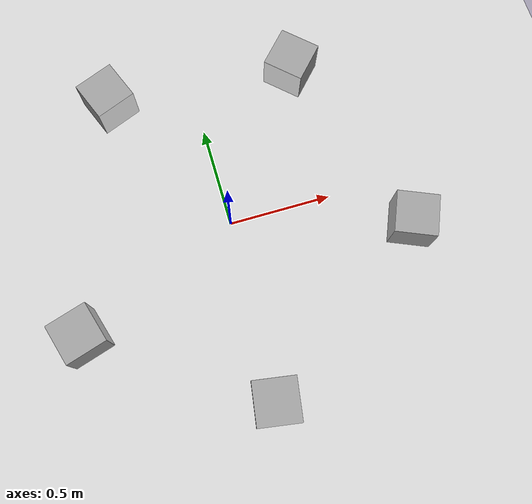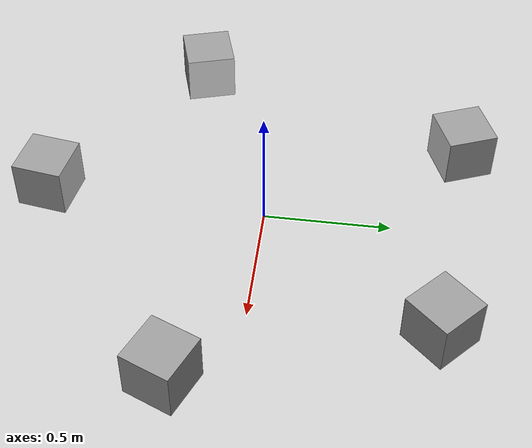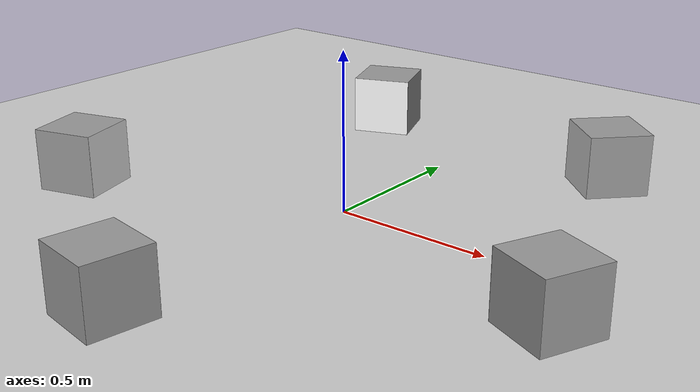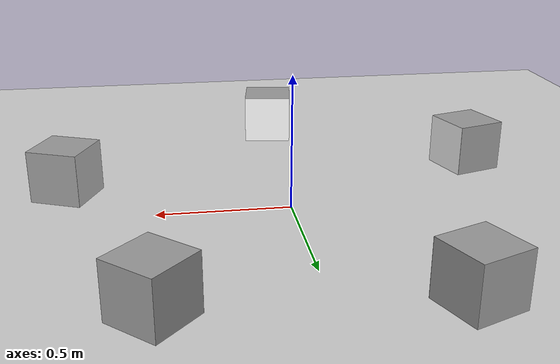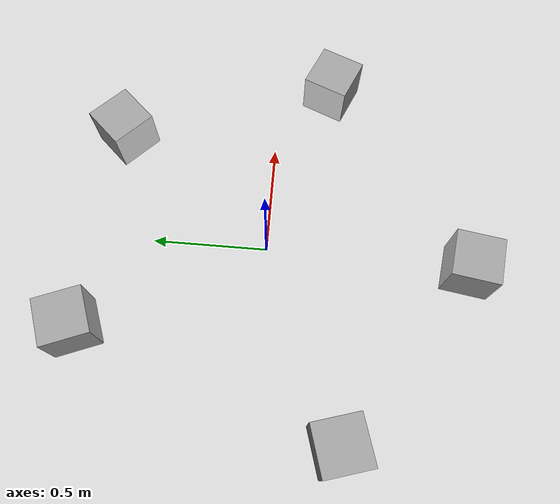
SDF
<sdf version="1.7">
 <world name="default">
  <light name="sun" type="directional">
   <pose>0 0 10 0 -0 0</pose>
   <diffuse>0.8 0.8 0.8 1</diffuse>
   <specular>0.2 0.2 0.2 1</specular>
   <attenuation>
    <range>1000</range>
    <constant>0.9</constant>
    <linear>0.01</linear>
    <quadratic>0.001</quadratic>
   </attenuation>
   <direction>-0.5 0.1 -0.9</direction>
   <spot><inner_angle>0</inner_angle><outer_angle>0</outer_angle><falloff>0</falloff></spot>
  </light>
  <model name="ground_plane">
   <static>1</static>
   <link name="link">
    <collision name="collision">
     <geometry><plane><normal>0 0 1</normal><size>100 100</size></plane></geometry>
     <surface>
      <contact><collide_bitmask>65535</collide_bitmask></contact>
      <friction><ode><mu>100</mu><mu2>50</mu2></ode></friction>
     </surface>
    </collision>
    <visual name="visual">
     <cast_shadows>0</cast_shadows>
     <geometry><plane><normal>0 0 1</normal><size>100 100</size></plane></geometry>
     <material>
      <script><uri>file:///home/med/.gazebo/materials/scripts/gazebo.material</uri><name>Gazebo/Grey</name></script>
     </material>
    </visual>
   </link>
  </model>
  <gravity>0 0 -9.8</gravity>
  <magnetic_field>6e-06 2.3e-05 -4.2e-05</magnetic_field>
  <atmosphere type="adiabatic"/>
  <physics type="ode">
   <max_step_size>0.001</max_step_size>
   <real_time_factor>1</real_time_factor>
   <real_time_update_rate>1000</real_time_update_rate>
  </physics>
  <scene><ambient>0.4 0.4 0.4 1</ambient><background>0.7 0.7 0.7 1</background><shadows>1</shadows></scene>
  <audio><device>default</device></audio>
  <spherical_coordinates>
   <surface_model>EARTH_WGS84</surface_model>
   <latitude_deg>0</latitude_deg>
   <longitude_deg>0</longitude_deg>
   <elevation>0</elevation>
   <heading_deg>0</heading_deg>
  </spherical_coordinates>
  <model name="marker1_box">
   <link name="marker">
    <inertial>
     <mass>0.1</mass>
     <inertia><ixx>0</ixx><ixy>0</ixy><ixz>0</ixz><iyy>0</iyy><iyz>0</iyz><izz>0</izz></inertia>
    </inertial>
    <self_collide>1</self_collide>
    <pose>-0.76428 -0.101106 0.120004 -0.015494 1.56996 -0.015507</pose>
    <visual name="visual">
     <geometry><box><size>0.2 0.2 0.001</size></box></geometry>
     <material>
      <script>
       <uri>file:///home/med/.gazebo/models/marker1/materials/scripts</uri>
       <uri>file:///home/med/.gazebo/models/marker1/materials/textures</uri>
       <name>Aruco/marker1</name>
      </script>
      <shader type="pixel"><normal_map>__default__</normal_map></shader>
      <emissive>0 0 0 1</emissive>
      <ambient>1 1 1 1</ambient>
      <diffuse>1 1 1 1</diffuse>
      <specular>0 0 0 1</specular>
     </material>
    </visual>
    <collision name="collision">
     <geometry><box><size>0.2 0.2 0.02</size></box></geometry>
     <surface>
      <friction>
       <ode><mu>1</mu><mu2>1</mu2><fdir1>0 0 0</fdir1><slip1>0</slip1><slip2>0</slip2></ode>
       <torsional>
        <coefficient>1</coefficient>
        <patch_radius>0</patch_radius>
        <surface_radius>0</surface_radius>
        <use_patch_radius>1</use_patch_radius>
        <ode><slip>0</slip></ode>
       </torsional>
      </friction>
      <bounce><restitution_coefficient>0</restitution_coefficient><threshold>1e+06</threshold></bounce>
      <contact>
       <collide_without_contact>0</collide_without_contact>
       <collide_without_contact_bitmask>1</collide_without_contact_bitmask>
       <collide_bitmask>1</collide_bitmask>
       <ode>
        <soft_cfm>0</soft_cfm>
        <soft_erp>0.2</soft_erp>
        <kp>1e+13</kp>
        <kd>1</kd>
        <max_vel>0.01</max_vel>
        <min_depth>0</min_depth>
       </ode>
       <bullet>
        <split_impulse>1</split_impulse>
        <split_impulse_penetration_threshold>-0.01</split_impulse_penetration_threshold>
        <soft_cfm>0</soft_cfm>
        <soft_erp>0.2</soft_erp>
        <kp>1e+13</kp>
        <kd>1</kd>
       </bullet>
      </contact>
     </surface>
    </collision>
   </link>
   <link name="link_1">
    <inertial>
     <mass>1</mass>
     <inertia>
      <ixx>0.166667</ixx>
      <ixy>0</ixy>
      <ixz>0</ixz>
      <iyy>0.166667</iyy>
      <iyz>0</iyz>
      <izz>0.166667</izz>
     </inertia>
    </inertial>
    <pose>-0.86428 -0.101106 0.12 -1.3e-05 -4.2e-05 0</pose>
    <visual name="visual">
     <geometry><box><size>0.2 0.2 0.2</size></box></geometry>
     <material>
      <lighting>1</lighting>
      <script><uri>file://media/materials/scripts/gazebo.material</uri><name>Gazebo/Grey</name></script>
      <shader type="pixel"><normal_map>__default__</normal_map></shader>
      <emissive>0 0 0 1</emissive>
      <ambient>0.3 0.3 0.3 1</ambient>
      <diffuse>0.7 0.7 0.7 1</diffuse>
      <specular>0.01 0.01 0.01 1</specular>
     </material>
    </visual>
    <collision name="collision">
     <geometry><box><size>0.2 0.2 0.2</size></box></geometry>
     <surface>
      <friction>
       <ode><mu>1</mu><mu2>1</mu2><fdir1>0 0 0</fdir1><slip1>0</slip1><slip2>0</slip2></ode>
       <torsional>
        <coefficient>1</coefficient>
        <patch_radius>0</patch_radius>
        <surface_radius>0</surface_radius>
        <use_patch_radius>1</use_patch_radius>
        <ode><slip>0</slip></ode>
       </torsional>
      </friction>
      <bounce><restitution_coefficient>0</restitution_coefficient><threshold>1e+06</threshold></bounce>
      <contact>
       <collide_without_contact>0</collide_without_contact>
       <collide_without_contact_bitmask>1</collide_without_contact_bitmask>
       <collide_bitmask>1</collide_bitmask>
       <ode>
        <soft_cfm>0</soft_cfm>
        <soft_erp>0.2</soft_erp>
        <kp>1e+13</kp>
        <kd>1</kd>
        <max_vel>0.01</max_vel>
        <min_depth>0</min_depth>
       </ode>
       <bullet>
        <split_impulse>1</split_impulse>
        <split_impulse_penetration_threshold>-0.01</split_impulse_penetration_threshold>
        <soft_cfm>0</soft_cfm>
        <soft_erp>0.2</soft_erp>
        <kp>1e+13</kp>
        <kd>1</kd>
       </bullet>
      </contact>
     </surface>
    </collision>
   </link>
   <joint name="link_1_JOINT_3" type="fixed">
    <parent>link_1</parent>
    <child>marker</child>
    <physics>
     <ode><limit><cfm>0</cfm><erp>0.2</erp></limit><suspension><cfm>0</cfm><erp>0.2</erp></suspension></ode>
    </physics>
   </joint>
   <static>0</static>
   <pose>-0.003836 0.001459 -0.020009 1.2e-05 1.9e-05 2.73703</pose>
  </model>
  <model name="marker2_box">
   <link name="marker">
    <inertial>
     <mass>0.1</mass>
     <inertia><ixx>0</ixx><ixy>0</ixy><ixz>0</ixz><iyy>0</iyy><iyz>0</iyz><izz>0</izz></inertia>
    </inertial>
    <self_collide>1</self_collide>
    <pose>-0.76428 -0.101106 0.120004 -0.015494 1.56996 -0.015507</pose>
    <visual name="visual">
     <geometry><box><size>0.2 0.2 0.001</size></box></geometry>
     <material>
      <script>
       <uri>file:///home/med/.gazebo/models/marker2/materials/scripts</uri>
       <uri>file:///home/med/.gazebo/models/marker2/materials/textures</uri>
       <name>Aruco/marker2</name>
      </script>
      <shader type="pixel"><normal_map>__default__</normal_map></shader>
      <emissive>0 0 0 1</emissive>
      <ambient>1 1 1 1</ambient>
      <diffuse>1 1 1 1</diffuse>
      <specular>0 0 0 1</specular>
     </material>
    </visual>
    <collision name="collision">
     <geometry><box><size>0.2 0.2 0.02</size></box></geometry>
     <surface>
      <friction>
       <ode><mu>1</mu><mu2>1</mu2><fdir1>0 0 0</fdir1><slip1>0</slip1><slip2>0</slip2></ode>
       <torsional>
        <coefficient>1</coefficient>
        <patch_radius>0</patch_radius>
        <surface_radius>0</surface_radius>
        <use_patch_radius>1</use_patch_radius>
        <ode><slip>0</slip></ode>
       </torsional>
      </friction>
      <bounce><restitution_coefficient>0</restitution_coefficient><threshold>1e+06</threshold></bounce>
      <contact>
       <collide_without_contact>0</collide_without_contact>
       <collide_without_contact_bitmask>1</collide_without_contact_bitmask>
       <collide_bitmask>1</collide_bitmask>
       <ode>
        <soft_cfm>0</soft_cfm>
        <soft_erp>0.2</soft_erp>
        <kp>1e+13</kp>
        <kd>1</kd>
        <max_vel>0.01</max_vel>
        <min_depth>0</min_depth>
       </ode>
       <bullet>
        <split_impulse>1</split_impulse>
        <split_impulse_penetration_threshold>-0.01</split_impulse_penetration_threshold>
        <soft_cfm>0</soft_cfm>
        <soft_erp>0.2</soft_erp>
        <kp>1e+13</kp>
        <kd>1</kd>
       </bullet>
      </contact>
     </surface>
    </collision>
   </link>
   <link name="link_1">
    <inertial>
     <mass>1</mass>
     <inertia>
      <ixx>0.166667</ixx>
      <ixy>0</ixy>
      <ixz>0</ixz>
      <iyy>0.166667</iyy>
      <iyz>0</iyz>
      <izz>0.166667</izz>
     </inertia>
    </inertial>
    <pose>-0.86428 -0.101106 0.12 -1.3e-05 -4.2e-05 0</pose>
    <visual name="visual">
     <geometry><box><size>0.2 0.2 0.2</size></box></geometry>
     <material>
      <lighting>1</lighting>
      <script><uri>file:///home/med/.gazebo/materials/scripts/gazebo.material</uri><name>Gazebo/Grey</name></script>
      <shader type="pixel"><normal_map>__default__</normal_map></shader>
      <emissive>0 0 0 1</emissive>
      <ambient>0.3 0.3 0.3 1</ambient>
      <diffuse>0.7 0.7 0.7 1</diffuse>
      <specular>0.01 0.01 0.01 1</specular>
     </material>
    </visual>
    <collision name="collision">
     <geometry><box><size>0.2 0.2 0.2</size></box></geometry>
     <surface>
      <friction>
       <ode><mu>1</mu><mu2>1</mu2><fdir1>0 0 0</fdir1><slip1>0</slip1><slip2>0</slip2></ode>
       <torsional>
        <coefficient>1</coefficient>
        <patch_radius>0</patch_radius>
        <surface_radius>0</surface_radius>
        <use_patch_radius>1</use_patch_radius>
        <ode><slip>0</slip></ode>
       </torsional>
      </friction>
      <bounce><restitution_coefficient>0</restitution_coefficient><threshold>1e+06</threshold></bounce>
      <contact>
       <collide_without_contact>0</collide_without_contact>
       <collide_without_contact_bitmask>1</collide_without_contact_bitmask>
       <collide_bitmask>1</collide_bitmask>
       <ode>
        <soft_cfm>0</soft_cfm>
        <soft_erp>0.2</soft_erp>
        <kp>1e+13</kp>
        <kd>1</kd>
        <max_vel>0.01</max_vel>
        <min_depth>0</min_depth>
       </ode>
       <bullet>
        <split_impulse>1</split_impulse>
        <split_impulse_penetration_threshold>-0.01</split_impulse_penetration_threshold>
        <soft_cfm>0</soft_cfm>
        <soft_erp>0.2</soft_erp>
        <kp>1e+13</kp>
        <kd>1</kd>
       </bullet>
      </contact>
     </surface>
    </collision>
   </link>
   <joint name="link_1_JOINT_3" type="fixed">
    <parent>link_1</parent>
    <child>marker</child>
    <physics>
     <ode><limit><cfm>0</cfm><erp>0.2</erp></limit><suspension><cfm>0</cfm><erp>0.2</erp></suspension></ode>
    </physics>
   </joint>
   <static>0</static>
   <pose>-0.004223 -9.7e-05 -0.020007 1.6e-05 1.8e-05 -2.32512</pose>
  </model>
  <model name="marker4_box">
   <link name="marker">
    <inertial>
     <mass>0.1</mass>
     <inertia><ixx>0</ixx><ixy>0</ixy><ixz>0</ixz><iyy>0</iyy><iyz>0</iyz><izz>0</izz></inertia>
    </inertial>
    <self_collide>1</self_collide>
    <pose>-0.76428 -0.101106 0.120004 -0.015494 1.56996 -0.015507</pose>
    <visual name="visual">
     <geometry><box><size>0.2 0.2 0.001</size></box></geometry>
     <material>
      <script>
       <uri>file:///home/med/.gazebo/models/marker4/materials/scripts</uri>
       <uri>file:///home/med/.gazebo/models/marker4/materials/textures</uri>
       <name>Aruco/marker4</name>
      </script>
      <shader type="pixel"><normal_map>__default__</normal_map></shader>
      <emissive>0 0 0 1</emissive>
      <ambient>1 1 1 1</ambient>
      <diffuse>1 1 1 1</diffuse>
      <specular>0 0 0 1</specular>
     </material>
    </visual>
    <collision name="collision">
     <geometry><box><size>0.2 0.2 0.02</size></box></geometry>
     <surface>
      <friction>
       <ode><mu>1</mu><mu2>1</mu2><fdir1>0 0 0</fdir1><slip1>0</slip1><slip2>0</slip2></ode>
       <torsional>
        <coefficient>1</coefficient>
        <patch_radius>0</patch_radius>
        <surface_radius>0</surface_radius>
        <use_patch_radius>1</use_patch_radius>
        <ode><slip>0</slip></ode>
       </torsional>
      </friction>
      <bounce><restitution_coefficient>0</restitution_coefficient><threshold>1e+06</threshold></bounce>
      <contact>
       <collide_without_contact>0</collide_without_contact>
       <collide_without_contact_bitmask>1</collide_without_contact_bitmask>
       <collide_bitmask>1</collide_bitmask>
       <ode>
        <soft_cfm>0</soft_cfm>
        <soft_erp>0.2</soft_erp>
        <kp>1e+13</kp>
        <kd>1</kd>
        <max_vel>0.01</max_vel>
        <min_depth>0</min_depth>
       </ode>
       <bullet>
        <split_impulse>1</split_impulse>
        <split_impulse_penetration_threshold>-0.01</split_impulse_penetration_threshold>
        <soft_cfm>0</soft_cfm>
        <soft_erp>0.2</soft_erp>
        <kp>1e+13</kp>
        <kd>1</kd>
       </bullet>
      </contact>
     </surface>
    </collision>
   </link>
   <link name="link_1">
    <inertial>
     <mass>1</mass>
     <inertia>
      <ixx>0.166667</ixx>
      <ixy>0</ixy>
      <ixz>0</ixz>
      <iyy>0.166667</iyy>
      <iyz>0</iyz>
      <izz>0.166667</izz>
     </inertia>
    </inertial>
    <pose>-0.86428 -0.101106 0.12 -1.3e-05 -4.2e-05 0</pose>
    <visual name="visual">
     <geometry><box><size>0.2 0.2 0.2</size></box></geometry>
     <material>
      <lighting>1</lighting>
      <script><uri>file:///home/med/.gazebo/materials/scripts/gazebo.material</uri><name>Gazebo/Grey</name></script>
      <shader type="pixel"><normal_map>__default__</normal_map></shader>
      <emissive>0 0 0 1</emissive>
      <ambient>0.3 0.3 0.3 1</ambient>
      <diffuse>0.7 0.7 0.7 1</diffuse>
      <specular>0.01 0.01 0.01 1</specular>
     </material>
    </visual>
    <collision name="collision">
     <geometry><box><size>0.2 0.2 0.2</size></box></geometry>
     <surface>
      <friction>
       <ode><mu>1</mu><mu2>1</mu2><fdir1>0 0 0</fdir1><slip1>0</slip1><slip2>0</slip2></ode>
       <torsional>
        <coefficient>1</coefficient>
        <patch_radius>0</patch_radius>
        <surface_radius>0</surface_radius>
        <use_patch_radius>1</use_patch_radius>
        <ode><slip>0</slip></ode>
       </torsional>
      </friction>
      <bounce><restitution_coefficient>0</restitution_coefficient><threshold>1e+06</threshold></bounce>
      <contact>
       <collide_without_contact>0</collide_without_contact>
       <collide_without_contact_bitmask>1</collide_without_contact_bitmask>
       <collide_bitmask>1</collide_bitmask>
       <ode>
        <soft_cfm>0</soft_cfm>
        <soft_erp>0.2</soft_erp>
        <kp>1e+13</kp>
        <kd>1</kd>
        <max_vel>0.01</max_vel>
        <min_depth>0</min_depth>
       </ode>
       <bullet>
        <split_impulse>1</split_impulse>
        <split_impulse_penetration_threshold>-0.01</split_impulse_penetration_threshold>
        <soft_cfm>0</soft_cfm>
        <soft_erp>0.2</soft_erp>
        <kp>1e+13</kp>
        <kd>1</kd>
       </bullet>
      </contact>
     </surface>
    </collision>
   </link>
   <joint name="link_1_JOINT_3" type="fixed">
    <parent>link_1</parent>
    <child>marker</child>
    <physics>
     <ode><limit><cfm>0</cfm><erp>0.2</erp></limit><suspension><cfm>0</cfm><erp>0.2</erp></suspension></ode>
    </physics>
   </joint>
   <static>0</static>
   <pose>0.001108 -0.001105 -0.020007 1.7e-05 1.7e-05 0.289903</pose>
  </model>
  <model name="marker5_box">
   <link name="marker">
    <inertial>
     <mass>0.1</mass>
     <inertia><ixx>0</ixx><ixy>0</ixy><ixz>0</ixz><iyy>0</iyy><iyz>0</iyz><izz>0</izz></inertia>
    </inertial>
    <self_collide>1</self_collide>
    <pose>-0.76428 -0.101106 0.120004 -0.015494 1.56996 -0.015507</pose>
    <visual name="visual">
     <geometry><box><size>0.2 0.2 0.001</size></box></geometry>
     <material>
      <script>
       <uri>file:///home/med/.gazebo/models/marker5/materials/scripts</uri>
       <uri>file:///home/med/.gazebo/models/marker5/materials/textures</uri>
       <name>Aruco/marker5</name>
      </script>
      <shader type="pixel"><normal_map>__default__</normal_map></shader>
      <emissive>0 0 0 1</emissive>
      <ambient>1 1 1 1</ambient>
      <diffuse>1 1 1 1</diffuse>
      <specular>0 0 0 1</specular>
     </material>
    </visual>
    <collision name="collision">
     <geometry><box><size>0.2 0.2 0.02</size></box></geometry>
     <surface>
      <friction>
       <ode><mu>1</mu><mu2>1</mu2><fdir1>0 0 0</fdir1><slip1>0</slip1><slip2>0</slip2></ode>
       <torsional>
        <coefficient>1</coefficient>
        <patch_radius>0</patch_radius>
        <surface_radius>0</surface_radius>
        <use_patch_radius>1</use_patch_radius>
        <ode><slip>0</slip></ode>
       </torsional>
      </friction>
      <bounce><restitution_coefficient>0</restitution_coefficient><threshold>1e+06</threshold></bounce>
      <contact>
       <collide_without_contact>0</collide_without_contact>
       <collide_without_contact_bitmask>1</collide_without_contact_bitmask>
       <collide_bitmask>1</collide_bitmask>
       <ode>
        <soft_cfm>0</soft_cfm>
        <soft_erp>0.2</soft_erp>
        <kp>1e+13</kp>
        <kd>1</kd>
        <max_vel>0.01</max_vel>
        <min_depth>0</min_depth>
       </ode>
       <bullet>
        <split_impulse>1</split_impulse>
        <split_impulse_penetration_threshold>-0.01</split_impulse_penetration_threshold>
        <soft_cfm>0</soft_cfm>
        <soft_erp>0.2</soft_erp>
        <kp>1e+13</kp>
        <kd>1</kd>
       </bullet>
      </contact>
     </surface>
    </collision>
   </link>
   <link name="link_1">
    <inertial>
     <mass>1</mass>
     <inertia>
      <ixx>0.166667</ixx>
      <ixy>0</ixy>
      <ixz>0</ixz>
      <iyy>0.166667</iyy>
      <iyz>0</iyz>
      <izz>0.166667</izz>
     </inertia>
    </inertial>
    <pose>-0.86428 -0.101106 0.12 -1.3e-05 -4.2e-05 0</pose>
    <visual name="visual">
     <geometry><box><size>0.2 0.2 0.2</size></box></geometry>
     <material>
      <lighting>1</lighting>
      <script><uri>file:///home/med/.gazebo/materials/scripts/gazebo.material</uri><name>Gazebo/Grey</name></script>
      <shader type="pixel"><normal_map>__default__</normal_map></shader>
      <emissive>0 0 0 1</emissive>
      <ambient>0.3 0.3 0.3 1</ambient>
      <diffuse>0.7 0.7 0.7 1</diffuse>
      <specular>0.01 0.01 0.01 1</specular>
     </material>
    </visual>
    <collision name="collision">
     <geometry><box><size>0.2 0.2 0.2</size></box></geometry>
     <surface>
      <friction>
       <ode><mu>1</mu><mu2>1</mu2><fdir1>0 0 0</fdir1><slip1>0</slip1><slip2>0</slip2></ode>
       <torsional>
        <coefficient>1</coefficient>
        <patch_radius>0</patch_radius>
        <surface_radius>0</surface_radius>
        <use_patch_radius>1</use_patch_radius>
        <ode><slip>0</slip></ode>
       </torsional>
      </friction>
      <bounce><restitution_coefficient>0</restitution_coefficient><threshold>1e+06</threshold></bounce>
      <contact>
       <collide_without_contact>0</collide_without_contact>
       <collide_without_contact_bitmask>1</collide_without_contact_bitmask>
       <collide_bitmask>1</collide_bitmask>
       <ode>
        <soft_cfm>0</soft_cfm>
        <soft_erp>0.2</soft_erp>
        <kp>1e+13</kp>
        <kd>1</kd>
        <max_vel>0.01</max_vel>
        <min_depth>0</min_depth>
       </ode>
       <bullet>
        <split_impulse>1</split_impulse>
        <split_impulse_penetration_threshold>-0.01</split_impulse_penetration_threshold>
        <soft_cfm>0</soft_cfm>
        <soft_erp>0.2</soft_erp>
        <kp>1e+13</kp>
        <kd>1</kd>
       </bullet>
      </contact>
     </surface>
    </collision>
   </link>
   <joint name="link_1_JOINT_3" type="fixed">
    <parent>link_1</parent>
    <child>marker</child>
    <physics>
     <ode><limit><cfm>0</cfm><erp>0.2</erp></limit><suspension><cfm>0</cfm><erp>0.2</erp></suspension></ode>
    </physics>
   </joint>
   <static>0</static>
   <pose>0.002517 0.001081 -0.020019 8e-06 1.8e-05 1.41104</pose>
  </model>
  <model name="marker3_box">
   <link name="marker">
    <inertial>
     <mass>0.1</mass>
     <inertia><ixx>0</ixx><ixy>0</ixy><ixz>0</ixz><iyy>0</iyy><iyz>0</iyz><izz>0</izz></inertia>
    </inertial>
    <self_collide>1</self_collide>
    <pose>-0.76428 -0.101106 0.120004 -0.015494 1.56996 -0.015507</pose>
    <visual name="visual">
     <geometry><box><size>0.2 0.2 0.001</size></box></geometry>
     <material>
      <script>
       <uri>file:///home/med/.gazebo/models/marker3/materials/scripts</uri>
       <uri>file:///home/med/.gazebo/models/marker3/materials/textures</uri>
       <name>Aruco/marker3</name>
      </script>
      <shader type="pixel"><normal_map>__default__</normal_map></shader>
      <emissive>0 0 0 1</emissive>
      <ambient>1 1 1 1</ambient>
      <diffuse>1 1 1 1</diffuse>
      <specular>0 0 0 1</specular>
     </material>
    </visual>
    <collision name="collision">
     <geometry><box><size>0.2 0.2 0.02</size></box></geometry>
     <surface>
      <friction>
       <ode><mu>1</mu><mu2>1</mu2><fdir1>0 0 0</fdir1><slip1>0</slip1><slip2>0</slip2></ode>
       <torsional>
        <coefficient>1</coefficient>
        <patch_radius>0</patch_radius>
        <surface_radius>0</surface_radius>
        <use_patch_radius>1</use_patch_radius>
        <ode><slip>0</slip></ode>
       </torsional>
      </friction>
      <bounce><restitution_coefficient>0</restitution_coefficient><threshold>1e+06</threshold></bounce>
      <contact>
       <collide_without_contact>0</collide_without_contact>
       <collide_without_contact_bitmask>1</collide_without_contact_bitmask>
       <collide_bitmask>1</collide_bitmask>
       <ode>
        <soft_cfm>0</soft_cfm>
        <soft_erp>0.2</soft_erp>
        <kp>1e+13</kp>
        <kd>1</kd>
        <max_vel>0.01</max_vel>
        <min_depth>0</min_depth>
       </ode>
       <bullet>
        <split_impulse>1</split_impulse>
        <split_impulse_penetration_threshold>-0.01</split_impulse_penetration_threshold>
        <soft_cfm>0</soft_cfm>
        <soft_erp>0.2</soft_erp>
        <kp>1e+13</kp>
        <kd>1</kd>
       </bullet>
      </contact>
     </surface>
    </collision>
   </link>
   <link name="link_1">
    <inertial>
     <mass>1</mass>
     <inertia>
      <ixx>0.166667</ixx>
      <ixy>0</ixy>
      <ixz>0</ixz>
      <iyy>0.166667</iyy>
      <iyz>0</iyz>
      <izz>0.166667</izz>
     </inertia>
    </inertial>
    <pose>-0.86428 -0.101106 0.12 -1.3e-05 -4.2e-05 0</pose>
    <visual name="visual">
     <geometry><box><size>0.2 0.2 0.2</size></box></geometry>
     <material>
      <lighting>1</lighting>
      <script><uri>file:///home/med/.gazebo/materials/scripts/gazebo.material</uri><name>Gazebo/Grey</name></script>
      <shader type="pixel"><normal_map>__default__</normal_map></shader>
      <emissive>0 0 0 1</emissive>
      <ambient>0.3 0.3 0.3 1</ambient>
      <diffuse>0.7 0.7 0.7 1</diffuse>
      <specular>0.01 0.01 0.01 1</specular>
     </material>
    </visual>
    <collision name="collision">
     <geometry><box><size>0.2 0.2 0.2</size></box></geometry>
     <surface>
      <friction>
       <ode><mu>1</mu><mu2>1</mu2><fdir1>0 0 0</fdir1><slip1>0</slip1><slip2>0</slip2></ode>
       <torsional>
        <coefficient>1</coefficient>
        <patch_radius>0</patch_radius>
        <surface_radius>0</surface_radius>
        <use_patch_radius>1</use_patch_radius>
        <ode><slip>0</slip></ode>
       </torsional>
      </friction>
      <bounce><restitution_coefficient>0</restitution_coefficient><threshold>1e+06</threshold></bounce>
      <contact>
       <collide_without_contact>0</collide_without_contact>
       <collide_without_contact_bitmask>1</collide_without_contact_bitmask>
       <collide_bitmask>1</collide_bitmask>
       <ode>
        <soft_cfm>0</soft_cfm>
        <soft_erp>0.2</soft_erp>
        <kp>1e+13</kp>
        <kd>1</kd>
        <max_vel>0.01</max_vel>
        <min_depth>0</min_depth>
       </ode>
       <bullet>
        <split_impulse>1</split_impulse>
        <split_impulse_penetration_threshold>-0.01</split_impulse_penetration_threshold>
        <soft_cfm>0</soft_cfm>
        <soft_erp>0.2</soft_erp>
        <kp>1e+13</kp>
        <kd>1</kd>
       </bullet>
      </contact>
     </surface>
    </collision>
   </link>
   <joint name="link_1_JOINT_3" type="fixed">
    <parent>link_1</parent>
    <child>marker</child>
    <physics>
     <ode><limit><cfm>0</cfm><erp>0.2</erp></limit><suspension><cfm>0</cfm><erp>0.2</erp></suspension></ode>
    </physics>
   </joint>
   <static>0</static>
   <pose>-0.000576 0.000576 -0.020006 2.1e-05 1.8e-05 -1.1898</pose>
  </model>
 </world>
</sdf>
